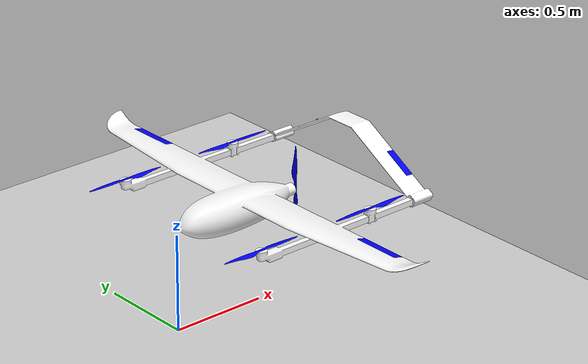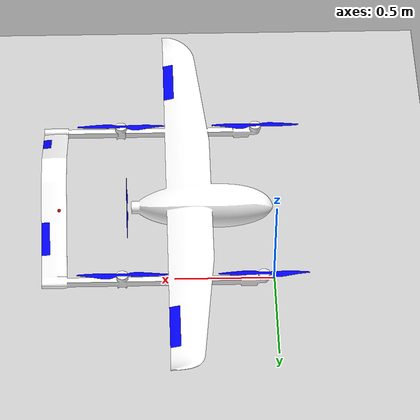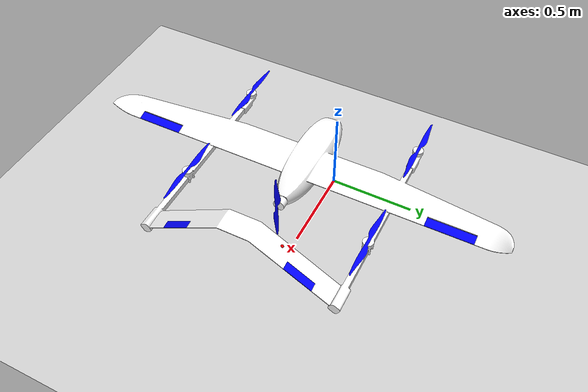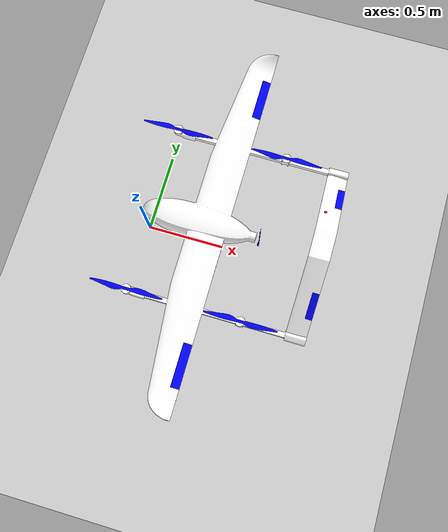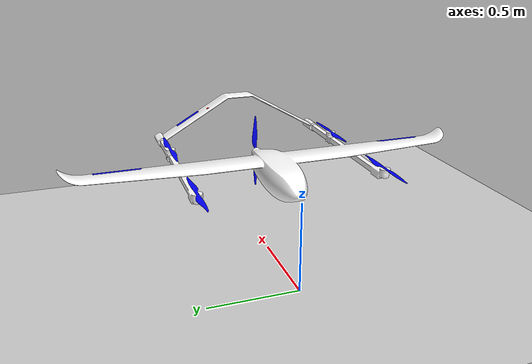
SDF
<?xml version="1.0" ?>
<sdf version="1.6">
  <world name="default">
    <physics name="1ms" type="ignored">
      <max_step_size>0.001</max_step_size>
      <real_time_factor>1.0</real_time_factor>
    </physics>

    <include>
      <uri>https://fuel.gazebosim.org/1.0/OpenRobotics/models/Sun</uri>
    </include>

    <include>
      <uri>https://fuel.gazebosim.org/1.0/OpenRobotics/models/Ground Plane</uri>
    </include>

    <include>

      <uri>model://amsr_vtol</uri>
      <pose>0 0 0.5 0 0 0</pose>
    </include>

  </world>
</sdf>

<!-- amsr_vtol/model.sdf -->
<sdf version='1.10'>
  <model name='amsr_vtol'>
    <pose>0 0 0.5 0 0 0</pose>
    <link name='base_link'>
      <pose>0.4305 0 0.0572 0 0 3.14159</pose>
      <inertial>
        <pose>0 0 0 0 0 3.14159</pose>
        <mass>6.92</mass>
        <inertia>
          <ixx>0.894</ixx>
          <ixy>0</ixy>
          <ixz>-0.041</ixz>
          <iyy>0.392</iyy>
          <iyz>0</iyz>
          <izz>1.245</izz>
        </inertia>
      </inertial>

      <collision name='base_link_collision'>
        <pose>0.4305 0 -0.0572 0 0 3.14159</pose>
        <geometry>
          <mesh>
            <scale>0.001 0.001 0.001</scale>
            <uri>model://amsr_vtol/meshes/amsr_vtol_fuselage.dae</uri>
          </mesh>
        </geometry>
        <surface>
          <contact>
            <ode>
              <kp>100000</kp>
              <kd>1.0</kd>
              <max_vel>0.1</max_vel>
              <min_depth>0.001</min_depth>
            </ode>
          </contact>
          <friction>
            <ode />
          </friction>
        </surface>
      </collision>
      <visual name='base_link_visual'>
        <pose>0.4305 0 -0.0572 0 0 3.14159</pose>
        <geometry>
          <mesh>
            <scale>0.001 0.001 0.001</scale>
            <uri>model://amsr_vtol/meshes/amsr_vtol_fuselage.dae</uri>
          </mesh>
        </geometry>
        <material>
          <ambient>1.0 1.0 1.0 1.0</ambient>
          <diffuse>1.0 1.0 1.0 1.0</diffuse>
        </material>
      </visual>
      <visual name='cp_marker_aileron'>
        <pose>-0.0463 -0.500 0.02 0 0 0</pose>
        <geometry>
          <sphere> <radius>0.01</radius> </sphere> </geometry>
        <material>
          <ambient>1 0 0 1</ambient> <diffuse>1 0 0 1</diffuse>
        </material>
      </visual>

      <visual name='cp_marker_rudder'>
        <pose>-0.6265 -0.200 0.16 0 0 0</pose>
        <geometry>
          <sphere> <radius>0.01</radius> </sphere>
        </geometry>
        <material>
          <ambient>1 0 0 1</ambient> <diffuse>1 0 0 1</diffuse>
        </material>
      </visual>

      <gravity>1</gravity>
      <velocity_decay />
      <self_collide>0</self_collide>

      <sensor name="imu_sensor" type="imu">
        <gz_frame_id>base_link</gz_frame_id>
        <always_on>1</always_on>
        <update_rate>250</update_rate>
        <imu>
          <angular_velocity>
            <x>
              <noise type="gaussian">
                <mean>0</mean>
                <stddev>0.0003394</stddev>
                <dynamic_bias_stddev>3.8785e-05</dynamic_bias_stddev>
                <dynamic_bias_correlation_time>1000</dynamic_bias_correlation_time>
              </noise>
            </x>
            <y>
              <noise type="gaussian">
                <mean>0</mean>
                <stddev>0.0003394</stddev>
                <dynamic_bias_stddev>3.8785e-05</dynamic_bias_stddev>
                <dynamic_bias_correlation_time>1000</dynamic_bias_correlation_time>
              </noise>
            </y>
            <z>
              <noise type="gaussian">
                <mean>0</mean>
                <stddev>0.0003394</stddev>
                <dynamic_bias_stddev>3.8785e-05</dynamic_bias_stddev>
                <dynamic_bias_correlation_time>1000</dynamic_bias_correlation_time>
              </noise>
            </z>
          </angular_velocity>
          <linear_acceleration>
            <x>
              <noise type="gaussian">
                <mean>0</mean>
                <stddev>0.004</stddev>
                <dynamic_bias_stddev>0.006</dynamic_bias_stddev>
                <dynamic_bias_correlation_time>300</dynamic_bias_correlation_time>
              </noise>
            </x>
            <y>
              <noise type="gaussian">
                <mean>0</mean>
                <stddev>0.004</stddev>
                <dynamic_bias_stddev>0.006</dynamic_bias_stddev>
                <dynamic_bias_correlation_time>300</dynamic_bias_correlation_time>
              </noise>
            </y>
            <z>
              <noise type="gaussian">
                <mean>0</mean>
                <stddev>0.004</stddev>
                <dynamic_bias_stddev>0.006</dynamic_bias_stddev>
                <dynamic_bias_correlation_time>300</dynamic_bias_correlation_time>
              </noise>
            </z>
          </linear_acceleration>
        </imu>
      </sensor>

      <sensor name="air_pressure_sensor" type="air_pressure">
        <gz_frame_id>base_link</gz_frame_id>
        <always_on>1</always_on>
        <update_rate>50</update_rate>
        <air_pressure>
          <pressure>
            <noise type="gaussian">
              <mean>0</mean>
              <stddev>0.01</stddev>
            </noise>
          </pressure>
        </air_pressure>
      </sensor>

      <sensor name="magnetometer_sensor" type="magnetometer">
        <gz_frame_id>base_link</gz_frame_id>
        <always_on>1</always_on>
        <update_rate>100</update_rate>
        <magnetometer>
          <!-- TODO: update to fix units and coordinate system when we move past Harmonic -->
          <!-- See https://github.com/gazebosim/gz-sim/pull/2460 -->
          <!-- 3mgauss RMS: NOTE: noise is in tesla but sensor reports data in gauss -->
          <!-- Noise modeled after IIS2MDC -->
          <x>
            <noise type="gaussian">
              <stddev>0.0001</stddev>
            </noise>
          </x>
          <y>
            <noise type="gaussian">
              <stddev>0.0001</stddev>
            </noise>
          </y>
          <z>
            <noise type="gaussian">
              <stddev>0.0001</stddev>
            </noise>
          </z>
        </magnetometer>
      </sensor>
      <sensor name="navsat_sensor" type="navsat">
        <gz_frame_id>base_link</gz_frame_id>
        <always_on>1</always_on>
        <update_rate>30</update_rate>
      </sensor>
    </link>

    <include merge="true">
      <uri>model://airspeed</uri>
      <pose>0.4305 0. 0. 0. 0. 3.14159</pose>
    </include>
    <joint name='airspeed_joint' type='fixed'>
      <parent>base_link</parent>
      <child>airspeed_link</child>
      <pose relative_to="base_link">-0 0 0 0 0 0</pose>
    </joint>

    <link name='rotor_0'>
      <pose>0.0887 0.502 0.0866 0 0 3.14159</pose>
      <inertial>
        <pose>0 0 0 0 0 0</pose>
        <mass>0.019</mass>
        <inertia>
          <ixx>9.887e-07</ixx>
          <ixy>1.773e-06</ixy>
          <ixz>0</ixz>
          <iyy>2.095e-04</iyy>
          <iyz>0</iyz>
          <izz>2.104e-04</izz>
        </inertia>
      </inertial>
      <collision name='rotor_0_collision'>
        <pose>0 0 0 0 0 3.14159</pose>
        <geometry>
          <cylinder>
            <length>0.025</length>
            <radius>0.22</radius>
          </cylinder>
        </geometry>
        <surface>
          <contact>
            <ode />
          </contact>
          <friction>
            <ode />
          </friction>
        </surface>
      </collision>
      <visual name='rotor_0_visual'>
        <pose>0.0887 0.502 -0.0866 0 0 3.14159</pose>
        <geometry>
          <mesh>
            <scale>0.001 0.001 0.001</scale>
            <uri>model://amsr_vtol/meshes/amsr_vtol_lift_prop_1.dae</uri>
          </mesh>
        </geometry>
        <material>
          <ambient>0 0 1 1.0</ambient>
          <diffuse>0 0 1 1.0</diffuse>
        </material>
      </visual>
      <gravity>1</gravity>
      <velocity_decay />
      <self_collide>0</self_collide>
    </link>
    <joint name='rotor_0_joint' type='revolute'>
      <child>rotor_0</child>
      <parent>base_link</parent>
      <axis>
        <xyz>0 0 1</xyz>
        <limit>
          <lower>-1e+16</lower>
          <upper>1e+16</upper>
        </limit>
        <dynamics>
          <spring_reference>0</spring_reference>
          <spring_stiffness>0</spring_stiffness>
        </dynamics>
      </axis>
    </joint>

    <link name='rotor_1'>
      <pose>0.760 -0.502 0.0866 0 0 3.14159</pose>
      <inertial>
        <pose>0 0 0 0 0 0</pose>
        <mass>0.019</mass>
        <inertia>
          <ixx>9.887e-07</ixx>
          <ixy>1.773e-06</ixy>
          <ixz>0</ixz>
          <iyy>2.095e-04</iyy>
          <iyz>0</iyz>
          <izz>2.104e-04</izz>

        </inertia>
      </inertial>
      <collision name='rotor_1_collision'>
        <pose>0 0 0 0 0 0</pose>
        <geometry>
          <cylinder>
            <length>0.025</length>
            <radius>0.22</radius>
          </cylinder>
        </geometry>
        <surface>
          <contact>
            <ode />
          </contact>
          <friction>
            <ode />
          </friction>
        </surface>
      </collision>
      <visual name='rotor_1_visual'>
        <pose>0.760 -0.502 -0.0866 0 0 3.14159</pose>
        <geometry>
          <mesh>
            <scale>0.001 0.001 0.001</scale>
            <uri>model://amsr_vtol/meshes/amsr_vtol_lift_prop_3.dae</uri>
          </mesh>
        </geometry>
        <material>
          <ambient>0 0 1 1.0</ambient>
          <diffuse>0 0 1 1.0</diffuse>
        </material>
      </visual>
      <gravity>1</gravity>
      <velocity_decay />
      <self_collide>0</self_collide>
    </link>
    <joint name='rotor_1_joint' type='revolute'>
      <child>rotor_1</child>
      <parent>base_link</parent>
      <axis>
        <xyz>0 0 1</xyz>
        <limit>
          <lower>-1e+16</lower>
          <upper>1e+16</upper>
        </limit>
        <dynamics>
          <spring_reference>0</spring_reference>
          <spring_stiffness>0</spring_stiffness>
        </dynamics>
      </axis>
    </joint>

    <link name='rotor_2'>
      <pose>0.0887 -0.502 0.0866 0 0 3.14159</pose>
      <inertial>
        <pose>0 0 0 0 0 0</pose>
        <mass>0.019</mass>
        <inertia>
          <ixx>9.887e-07</ixx>
          <ixy>1.773e-06</ixy>
          <ixz>0</ixz>
          <iyy>2.095e-04</iyy>
          <iyz>0</iyz>
          <izz>2.104e-04</izz>

        </inertia>
      </inertial>
      <collision name='rotor_2_collision'>
        <pose>0 0 0 0 0 0</pose>
        <geometry>
          <cylinder>
            <length>0.025</length>
            <radius>0.22</radius>
          </cylinder>
        </geometry>
        <surface>
          <contact>
            <ode />
          </contact>
          <friction>
            <ode />
          </friction>
        </surface>
      </collision>
      <visual name='rotor_2_visual'>
        <pose>0.0887 -0.502 -0.0866 0 0 3.14159</pose>
        <geometry>
          <mesh>
            <scale>0.001 0.001 0.001</scale>
            <uri>model://amsr_vtol/meshes/amsr_vtol_lift_prop_2.dae</uri>
          </mesh>
        </geometry>
        <material>
          <ambient>0 0 1 1.0</ambient>
          <diffuse>0 0 1 1.0</diffuse>
        </material>
      </visual>
      <gravity>1</gravity>
      <velocity_decay />
      <self_collide>0</self_collide>
    </link>
    <joint name='rotor_2_joint' type='revolute'>
      <child>rotor_2</child>
      <parent>base_link</parent>
      <axis>
        <xyz>0 0 1</xyz>
        <limit>
          <lower>-1e+16</lower>
          <upper>1e+16</upper>
        </limit>
        <dynamics>
          <spring_reference>0</spring_reference>
          <spring_stiffness>0</spring_stiffness>
        </dynamics>
      </axis>
    </joint>

    <link name='rotor_3'>
      <pose>0.760 0.502 0.0866 0 0 3.14159</pose>
      <inertial>
        <pose>0 0 0 0 0 0</pose>
        <mass>0.019</mass>
        <inertia>
          <ixx>9.887e-07</ixx>
          <ixy>1.773e-06</ixy>
          <ixz>0</ixz>
          <iyy>2.095e-04</iyy>
          <iyz>0</iyz>
          <izz>2.104e-04</izz>

        </inertia>
      </inertial>
      <collision name='rotor_3_collision'>
        <pose>0 0 0 0 0 0</pose>
        <geometry>
          <cylinder>
            <length>0.025</length>
            <radius>0.22</radius>
          </cylinder>
        </geometry>
        <surface>
          <contact>
            <ode />
          </contact>
          <friction>
            <ode />
          </friction>
        </surface>
      </collision>
      <visual name='rotor_3_visual'>
        <pose>0.760 0.502 -0.0866 0 0 3.14159</pose>
        <geometry>
          <mesh>
            <scale>0.001 0.001 0.001</scale>
            <uri>model://amsr_vtol/meshes/amsr_vtol_lift_prop_4.dae</uri>
          </mesh>
        </geometry>
        <material>
          <ambient>0 0 1 1.0</ambient>
          <diffuse>0 0 1 1.0</diffuse>
        </material>
      </visual>
      <gravity>1</gravity>
      <velocity_decay />
      <self_collide>0</self_collide>
    </link>
    <joint name='rotor_3_joint' type='revolute'>
      <child>rotor_3</child>
      <parent>base_link</parent>
      <axis>
        <xyz>0 0 1</xyz>
        <limit>
          <lower>-1e+16</lower>
          <upper>1e+16</upper>
        </limit>
        <dynamics>
          <spring_reference>0</spring_reference>
          <spring_stiffness>0</spring_stiffness>
        </dynamics>
      </axis>
    </joint>

    <link name='rotor_puller'>
      <pose>0.714 0 0.025 0 0 3.14159</pose>
      <inertial>
        <pose>0 0 0 0 0 0</pose>    
        <mass>0.019</mass>
        <inertia>
          <ixx>2.104e-04</ixx>
          <ixy>0</ixy>
          <ixz>0</ixz>
          <iyy>2.095e-04</iyy>
          <iyz>1.773e-06</iyz>
          <izz>9.887e-07</izz>
        </inertia>
      </inertial>
      <collision name='rotor_puller_collision'>
        <pose>0 0 0 0 1.5708 0</pose>
        <geometry>
          <cylinder>
            <length>0.02</length>
            <radius>0.22</radius>
          </cylinder>
        </geometry>
        <surface>
          <contact><ode /></contact>
          <friction><ode /></friction>
        </surface>
      </collision>
      <visual name='rotor_puller_visual'>
        <pose>-0.02 0 0 0 0 0</pose>
        <geometry>
          <mesh>
            <scale>0.001 0.001 0.001</scale>
            <uri>model://amsr_vtol/meshes/amsr_vtol_cruise_prop.dae</uri>
          </mesh>
        </geometry>
        <material>
          <ambient>0 0 1 1.0</ambient>
          <diffuse>0 0 1 1.0</diffuse>
        </material>
      </visual>
      <gravity>1</gravity>
      <velocity_decay />
      <self_collide>0</self_collide>
    </link>

    <joint name='rotor_puller_joint' type='revolute'>
      <pose>0 0 0 0 0 0</pose>
      <child>rotor_puller</child>
      <parent>base_link</parent>
      <axis>
        <xyz>1 0 0</xyz>
        <limit>
          <lower>-1e+16</lower>
          <upper>1e+16</upper>
        </limit>
        <dynamics>
          <spring_reference>0</spring_reference>
          <spring_stiffness>0</spring_stiffness>
        </dynamics>
      </axis>
    </joint>

    <link name="left_aileron">
      <pose>0.512 -0.824 0.077 0 0 3.14159</pose>
      <inertial>
        <mass>0.00000001</mass>
        <inertia>
          <ixx>0.000001</ixx>
          <ixy>0.0</ixy>
          <iyy>0.000001</iyy>
          <ixz>0.0</ixz>
          <iyz>0.0</iyz>
          <izz>0.000001</izz>
        </inertia>
        <pose>0 0 0 0 0 3.14159</pose>
      </inertial>
      <visual name='left_aileron_visual'>
        <pose>0.512 -0.824 -0.077 0 0 3.14159</pose>
        <geometry>
          <mesh>
            <scale>0.001 0.001 0.001</scale>
            <uri>model://amsr_vtol/meshes/amsr_vtol_aileron_l.dae</uri>
          </mesh>
        </geometry>
        <material>
          <ambient>0 0 1 1.0</ambient>
          <diffuse>0 0 1 1.0</diffuse>
        </material>
      </visual>
    </link>

    <link name="right_aileron">
      <pose>0.512 0.824 0.077 0 0 3.14159</pose>
      <inertial>
        <mass>0.00000001</mass>
        <inertia>
          <ixx>0.000001</ixx>
          <ixy>0.0</ixy>
          <iyy>0.000001</iyy>
          <ixz>0.0</ixz>
          <iyz>0.0</iyz>
          <izz>0.000001</izz>
        </inertia>
        <pose>0 0 0 0 0 3.14159</pose>
      </inertial>
      <visual name='right_aileron_visual'>
        <pose>0.512 0.824 -0.077 0 0 3.14159</pose>
        <geometry>
          <mesh>
            <scale>0.001 0.001 0.001</scale>
            <uri>model://amsr_vtol/meshes/amsr_vtol_aileron_r.dae</uri>
          </mesh>
        </geometry>
        <material>
          <ambient>0 0 1 1.0</ambient>
          <diffuse>0 0 1 1.0</diffuse>
        </material>
      </visual>
    </link>

    <link name="left_rudder">
      <pose>0 0 0 0 0 3.14159</pose>
      <inertial>
        <mass>0.00000001</mass>
        <inertia>
          <ixx>0.000001</ixx>
          <ixy>0.0</ixy>
          <iyy>0.000001</iyy>
          <ixz>0.0</ixz>
          <iyz>0.0</iyz>
          <izz>0.000001</izz>
        </inertia>
        <pose>-1.118 0.320 0.146 1.047 0 0</pose>
      </inertial>
      <visual name='left_rudder_visual'>
        <pose>0 0 0 0 0 3.14159</pose>
        <geometry>
          <mesh>
            <scale>0.001 0.001 0.001</scale>
            <uri>model://amsr_vtol/meshes/amsr_vtol_rudder_l.dae</uri>
          </mesh>
        </geometry>
        <material>
          <ambient>0 0 1 1.0</ambient>
          <diffuse>0 0 1 1.0</diffuse>
        </material>
      </visual>
    </link>

    <link name="right_rudder">
      <pose>0 0 0 0 0 3.14159</pose>
      <inertial>
        <mass>0.00000001</mass>
        <inertia>
          <ixx>0.000001</ixx>
          <ixy>0.0</ixy>
          <iyy>0.000001</iyy>
          <ixz>0.0</ixz>
          <iyz>0.0</iyz>
          <izz>0.000001</izz>
        </inertia>
        <pose>-1.118 -0.320 0.146 -1.047 0 0</pose>
      </inertial>
      <visual name='right_rudder_visual'>
        <pose>0 0 0 0 0 3.14159</pose>
        <geometry>
          <mesh>
            <scale>0.001 0.001 0.001</scale>
            <uri>model://amsr_vtol/meshes/amsr_vtol_rudder_r.dae</uri>
          </mesh>
        </geometry>
        <material>
          <ambient>0 0 1 1.0</ambient>
          <diffuse>0 0 1 1.0</diffuse>
        </material>
      </visual>
    </link>

    <joint name='left_aileron_joint' type='revolute'>
      <parent>base_link</parent>
      <child>left_aileron</child>
      <pose>0 0 0 0 0 0</pose>
      <axis>
        <xyz>0 1 0</xyz>
        <limit>
          <lower>-0.52</lower>
          <upper>0.52</upper>
        </limit>
        <dynamics>
          <damping>1.000</damping>
        </dynamics>
      </axis>
      <physics>
        <ode>
          <implicit_spring_damper>1</implicit_spring_damper>
        </ode>
      </physics>
    </joint>

    <joint name='right_aileron_joint' type='revolute'>
      <parent>base_link</parent>
      <child>right_aileron</child>
      <pose>0 0 0 0 0 0</pose>
      <axis>
        <xyz>0 1 0</xyz>
        <limit>
          <lower>-0.52</lower>
          <upper>0.52</upper>
        </limit>
        <dynamics>
          <damping>1.000</damping>
        </dynamics>
      </axis>
      <physics>
        <ode>
          <implicit_spring_damper>1</implicit_spring_damper>
        </ode>
      </physics>
    </joint>

    <joint name='left_rudder_joint' type='revolute'>
      <parent>base_link</parent>
      <child>left_rudder</child>
      <pose>-1.118 0.320 0.146 1.047 0 0</pose>
      <axis>
         <xyz>0 0 -1</xyz>
        <limit>
          <lower>-0.52</lower>
          <upper>0.52</upper>
        </limit>
        <dynamics>
          <damping>1.000</damping>
        </dynamics>
      </axis>
      <physics>
        <ode>
          <implicit_spring_damper>1</implicit_spring_damper>
        </ode>
      </physics>
    </joint>

    <joint name='right_rudder_joint' type='revolute'>
      <parent>base_link</parent>
      <child>right_rudder</child>
      <pose>-1.118 -0.320 0.146 -1.047 0 0</pose>
      <axis>
         <xyz>0 0 1</xyz>
        <limit>
          <lower>-0.52</lower>
          <upper>0.52</upper>
        </limit>
        <dynamics>
          <damping>1.000</damping>
        </dynamics>
      </axis>
      <physics>
        <ode>
          <implicit_spring_damper>1</implicit_spring_damper>
        </ode>
      </physics>
    </joint>

    <plugin filename="gz-sim-lift-drag-system" name="gz::sim::systems::LiftDrag">
      <a0>-0.0918</a0>
      <cla>5.8</cla>
      <cda>0.0127</cda>
      <alpha_stall>0.21</alpha_stall>
      <cla_stall>-3.5</cla_stall>
      <cda_stall>1.0</cda_stall>
      <cma>0.0</cma>
      <cma_stall>0</cma_stall>

      <cp>-0.0463 0.500 0.02</cp>

      <area>0.2</area>
      <air_density>1.2041</air_density>
      <forward>-1 0 0</forward>
      <upward>0 0 1</upward>
      <link_name>base_link</link_name>
      <control_joint_name>left_aileron_joint</control_joint_name>
      <control_joint_rad_to_cl>-1.0</control_joint_rad_to_cl>
    </plugin>

    <plugin filename="gz-sim-lift-drag-system" name="gz::sim::systems::LiftDrag">
      <a0>-0.0918</a0>
      <cla>5.8</cla>
      <cda>0.0127</cda>
      <alpha_stall>0.21</alpha_stall>
      <cla_stall>-3.5</cla_stall>
      <cda_stall>1.0</cda_stall>
      <cma>0.0</cma>
      <cma_stall>0</cma_stall>

      <cp>-0.0463 -0.500 0.02</cp>

      <area>0.2</area>
      <air_density>1.2041</air_density>
      <forward>-1 0 0</forward>
      <upward>0 0 1</upward>
      <link_name>base_link</link_name>
      <control_joint_name>right_aileron_joint</control_joint_name>
      <control_joint_rad_to_cl>-1.0</control_joint_rad_to_cl>
    </plugin>

    <plugin filename="gz-sim-lift-drag-system" name="gz::sim::systems::LiftDrag">
      <a0>0.0</a0>
      <cla>4.5</cla>
      <cda>0.0127</cda>
      <alpha_stall>0.21</alpha_stall>
      <cla_stall>-3.5</cla_stall>
      <cda_stall>1.0</cda_stall>
      <cma>0.0</cma>
      <cma_stall>0</cma_stall>

      <cp>-0.6265 0.200 0.16</cp>

      <area>0.05</area>
      <air_density>1.2041</air_density>
      <forward>-1 0 0</forward>
      <upward>0 1 1</upward>
      <link_name>base_link</link_name>
      <control_joint_name>left_rudder_joint</control_joint_name>
      <control_joint_rad_to_cl>-1.0</control_joint_rad_to_cl>
    </plugin>

    <plugin filename="gz-sim-lift-drag-system" name="gz::sim::systems::LiftDrag">
      <a0>0.0</a0>
      <cla>4.5</cla>
      <cda>0.0127</cda>
      <alpha_stall>0.21</alpha_stall>
      <cla_stall>-3.5</cla_stall>
      <cda_stall>1.0</cda_stall>
      <cma>0.0</cma>
      <cma_stall>0</cma_stall>

      <cp>-0.6265 -0.200 0.16</cp>

      <area>0.05</area>
      <air_density>1.2041</air_density>
      <forward>-1 0 0</forward>
      <upward>0 -1 1</upward>
      <link_name>base_link</link_name>
      <control_joint_name>right_rudder_joint</control_joint_name>
      <control_joint_rad_to_cl>-1.0</control_joint_rad_to_cl>
    </plugin>

    <plugin filename="gz-sim-joint-position-controller-system" name="gz::sim::systems::JointPositionController">
      <joint_name>left_aileron_joint</joint_name>
      <sub_topic>servo_0</sub_topic>
    </plugin>

    <plugin filename="gz-sim-joint-position-controller-system" name="gz::sim::systems::JointPositionController">
      <joint_name>right_aileron_joint</joint_name>
      <sub_topic>servo_1</sub_topic>
    </plugin>

    <plugin filename="gz-sim-joint-position-controller-system" name="gz::sim::systems::JointPositionController">
      <joint_name>left_rudder_joint</joint_name>
      <sub_topic>servo_2</sub_topic>
    </plugin>

    <plugin filename="gz-sim-joint-position-controller-system" name="gz::sim::systems::JointPositionController">
      <joint_name>right_rudder_joint</joint_name>
      <sub_topic>servo_3</sub_topic>
    </plugin>

    <plugin filename="gz-sim-multicopter-motor-model-system" name="gz::sim::systems::MulticopterMotorModel">
      <jointName>rotor_0_joint</jointName>
      <linkName>rotor_0</linkName>
      <turningDirection>ccw</turningDirection>
      <timeConstantUp>0.0125</timeConstantUp>
      <timeConstantDown>0.025</timeConstantDown>
      <maxRotVelocity>800</maxRotVelocity>
      <motorConstant>6.17e-05</motorConstant>
      <momentConstant>0.02</momentConstant>
      <commandSubTopic>command/motor_speed</commandSubTopic>
      <motorNumber>0</motorNumber>
      <rotorDragCoefficient>0.000106428</rotorDragCoefficient>
      <rollingMomentCoefficient>1e-06</rollingMomentCoefficient>
      <rotorVelocitySlowdownSim>20</rotorVelocitySlowdownSim>
      <motorType>velocity</motorType>
    </plugin>

    <plugin filename="gz-sim-multicopter-motor-model-system" name="gz::sim::systems::MulticopterMotorModel">
      <jointName>rotor_1_joint</jointName>
      <linkName>rotor_1</linkName>
      <turningDirection>ccw</turningDirection>
      <timeConstantUp>0.0125</timeConstantUp>
      <timeConstantDown>0.025</timeConstantDown>
      <maxRotVelocity>800</maxRotVelocity>
      <motorConstant>6.17e-05</motorConstant>
      <momentConstant>0.02</momentConstant>
      <commandSubTopic>command/motor_speed</commandSubTopic>
      <motorNumber>1</motorNumber>
      <rotorDragCoefficient>0.000106428</rotorDragCoefficient>
      <rollingMomentCoefficient>1e-06</rollingMomentCoefficient>
      <rotorVelocitySlowdownSim>20</rotorVelocitySlowdownSim>
      <motorType>velocity</motorType>
    </plugin>

    <plugin filename="gz-sim-multicopter-motor-model-system" name="gz::sim::systems::MulticopterMotorModel">
      <jointName>rotor_2_joint</jointName>
      <linkName>rotor_2</linkName>
      <turningDirection>cw</turningDirection>
      <timeConstantUp>0.0125</timeConstantUp>
      <timeConstantDown>0.025</timeConstantDown>
      <maxRotVelocity>800</maxRotVelocity>
      <motorConstant>6.17e-05</motorConstant>
      <momentConstant>0.02</momentConstant>
      <commandSubTopic>command/motor_speed</commandSubTopic>
      <motorNumber>2</motorNumber>
      <rotorDragCoefficient>0.000106428</rotorDragCoefficient>
      <rollingMomentCoefficient>1e-06</rollingMomentCoefficient>
      <rotorVelocitySlowdownSim>20</rotorVelocitySlowdownSim>
      <motorType>velocity</motorType>
    </plugin>

    <plugin filename="gz-sim-multicopter-motor-model-system" name="gz::sim::systems::MulticopterMotorModel">
      <jointName>rotor_3_joint</jointName>
      <linkName>rotor_3</linkName>
      <turningDirection>cw</turningDirection>
      <timeConstantUp>0.0125</timeConstantUp>
      <timeConstantDown>0.025</timeConstantDown>
      <maxRotVelocity>800</maxRotVelocity>
      <motorConstant>6.17e-05</motorConstant>
      <momentConstant>0.02</momentConstant>
      <commandSubTopic>command/motor_speed</commandSubTopic>
      <motorNumber>3</motorNumber>
      <rotorDragCoefficient>0.000106428</rotorDragCoefficient>
      <rollingMomentCoefficient>1e-06</rollingMomentCoefficient>
      <rotorVelocitySlowdownSim>20</rotorVelocitySlowdownSim>
      <motorType>velocity</motorType>
    </plugin>

    <plugin filename="gz-sim-multicopter-motor-model-system" name="gz::sim::systems::MulticopterMotorModel">
      <jointName>rotor_puller_joint</jointName>
      <linkName>rotor_puller</linkName>
      <turningDirection>cw</turningDirection>
      <timeConstantUp>0.0125</timeConstantUp>
      <timeConstantDown>0.025</timeConstantDown>
      <maxRotVelocity>977</maxRotVelocity>
      <motorConstant>5.37e-05</motorConstant>
      <momentConstant>0.0</momentConstant>
      <commandSubTopic>command/motor_speed</commandSubTopic>
      <motorNumber>4</motorNumber>
      <rotorDragCoefficient>0.000106428</rotorDragCoefficient>
      <rollingMomentCoefficient>0</rollingMomentCoefficient>
      <rotorVelocitySlowdownSim>20</rotorVelocitySlowdownSim>
      <motorType>velocity</motorType>
    </plugin>

    <static>0</static>

    <include merge='true'>
      <uri>model://mono_cam</uri>
      <pose>0.4305 0 -0.05 3.14159 1.5708 0</pose>
      <name>mono_cam</name>
    </include>

    <joint name="camera_joint" type="fixed">
      <parent>base_link</parent>
      <child>camera_link</child>
    </joint>

  </model>
</sdf>

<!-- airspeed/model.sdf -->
<sdf version="1.6">
  <model name="airspeed">
    <link name="airspeed_link">
      <pose>0 0 0 0 0 0</pose>
      <inertial>
        <pose>0 0 0 0 0 0</pose>
        <mass>0.015</mass>
        <inertia>
          <ixx>1e-05</ixx>
          <ixy>0</ixy>
          <ixz>0</ixz>
          <iyy>1e-05</iyy>
          <iyz>0</iyz>
          <izz>1e-05</izz>
        </inertia>
      </inertial>
      <visual name="visual">
        <pose>0 0 0 0 1.57 0</pose>
        <geometry>
          <cylinder>
            <radius>0.004</radius>
            <length>0.08</length>
          </cylinder>
        </geometry> <!-- Black -->
        <material>
          <diffuse>0.0 0.0 0.0</diffuse>
          <specular>0.5 0.5 0.5</specular>
        </material>
      </visual>
      <sensor name="air_speed" type="air_speed">
        <pose>0 0 0 0 0 0</pose>
        <update_rate>5.0</update_rate>
        <always_on>1</always_on>
        <visualize>false</visualize>
      </sensor>
    </link>
  </model>
</sdf>

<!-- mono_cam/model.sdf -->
<sdf version='1.9'>
  <model name='mono_cam'>
    <pose>0 0 0 0 0 0</pose>
    <self_collide>false</self_collide>
    <static>false</static>
    <link name="mono_cam/base_link">
      <inertial>
        <pose>0.03 0.03 0.03 0 0 0</pose>
        <mass>0.050</mass>
        <inertia>
          <ixx>0.00004</ixx>
          <ixy>0</ixy>
          <ixz>0</ixz>
          <iyy>0.00004</iyy>
          <iyz>0</iyz>
          <izz>0.00004</izz>
        </inertia>
      </inertial>
      <sensor name="imager" type="camera">
        <pose>0 0 0 0 0 0</pose>
        <camera>
          <horizontal_fov>1.74</horizontal_fov>
          <image>
            <width>1280</width>
            <height>720</height>
          </image>
          <clip>
            <near>0.1</near>
            <far>3000</far>
          </clip>
        </camera>
        <always_on>1</always_on>
        <update_rate>30</update_rate>
        <visualize>true</visualize>
      </sensor>
      <gravity>true</gravity>
      <velocity_decay/>
    </link>
  </model>
</sdf>
